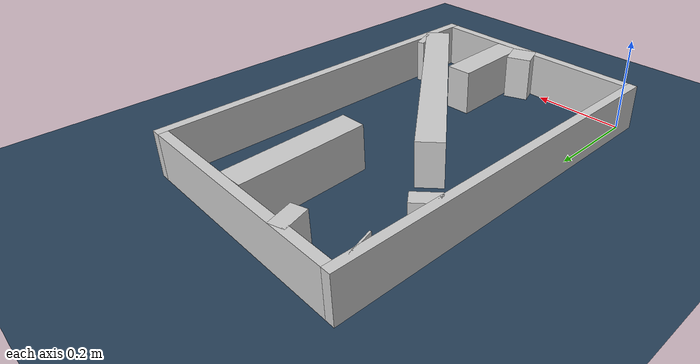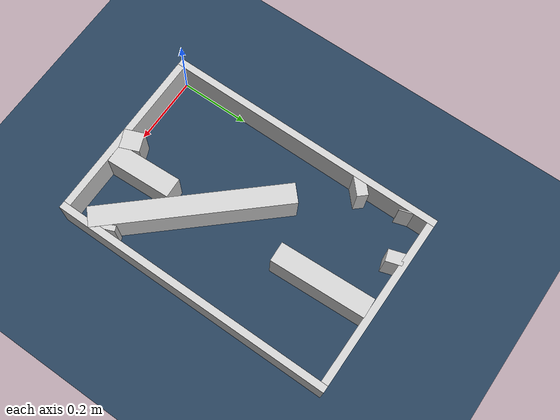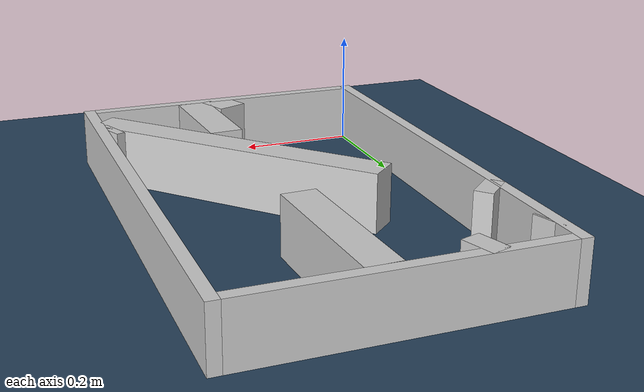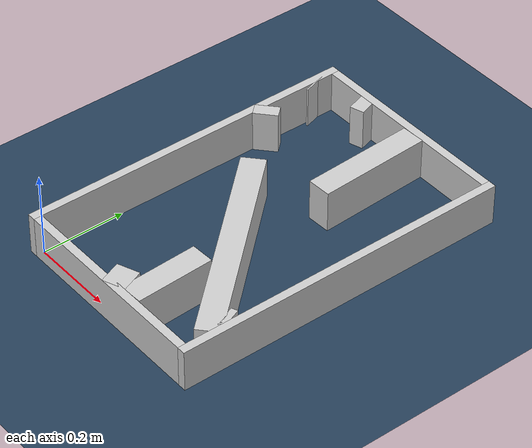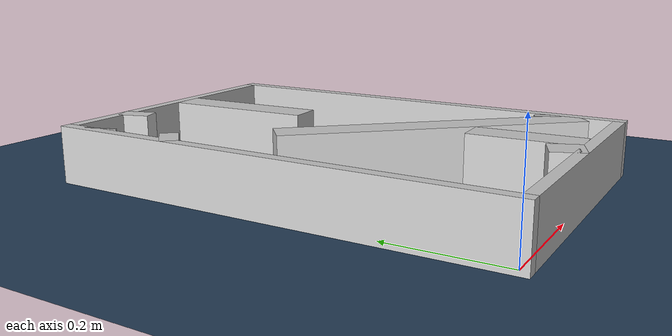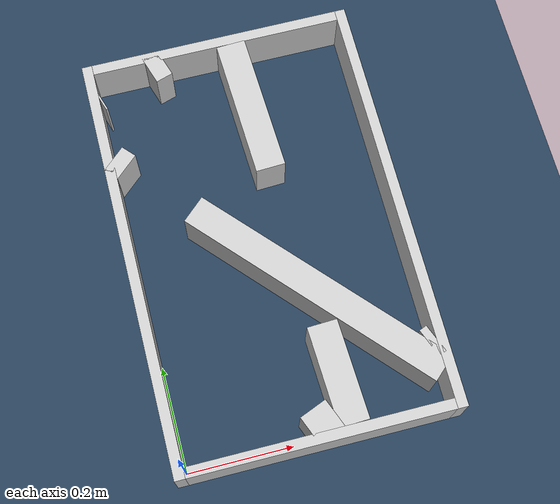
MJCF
<?xml version="1.0" ?>
<mujoco model="generated_real_template">
  <compiler angle="degree"/>
  <option timestep="0.002" integrator="implicitfast" iterations="100" cone="elliptic"/>
  <default>
    <geom density="1"/>
  </default>
  <asset>
    <texture builtin="gradient" height="3072" rgb1="0.3 0.5 0.7" rgb2="0 0 0" type="skybox" width="512"/>
    <texture builtin="checker" height="300" mark="edge" markrgb="0.8 0.8 0.8" name="groundplane" rgb1="0.2 0.3 0.4" rgb2="0.1 0.2 0.3" type="2d" width="300"/>
    <material name="groundplane" reflectance="0.2" texrepeat="5 5" texture="groundplane" texuniform="true"/>
  </asset>
  <worldbody>
    <light dir="0 0 -1" directional="true" pos="0 0 1.5"/>
    <geom name="floor" type="plane" condim="4" friction="0.5 0.005 0.001" material="groundplane" size="0 0 0.05"/>
    <body name="walls">
      <geom name="wall_boundary_left" type="box" condim="4" friction="1.0 0.005 0.0001" rgba="0.8 0.8 0.8 1" pos="-0.010000 0.387500 0.050000" euler="0 0 0.000000" size="0.010000 0.407500 0.050000"/>
      <geom name="wall_boundary_right" type="box" condim="4" friction="1.0 0.005 0.0001" rgba="0.8 0.8 0.8 1" pos="0.500000 0.387500 0.050000" euler="0 0 0.000000" size="0.010000 0.407500 0.050000"/>
      <geom name="wall_boundary_bottom" type="box" condim="4" friction="1.0 0.005 0.0001" rgba="0.8 0.8 0.8 1" pos="0.245000 -0.010000 0.050000" euler="0 0 0.000000" size="0.245000 0.010000 0.050000"/>
      <geom name="wall_boundary_top" type="box" condim="4" friction="1.0 0.005 0.0001" rgba="0.8 0.8 0.8 1" pos="0.245000 0.785000 0.050000" euler="0 0 0.000000" size="0.245000 0.010000 0.050000"/>
      <geom name="wall_inner_1_1" type="box" condim="4" friction="1.0 0.005 0.0001" rgba="0.8 0.8 0.8 1" pos="0.482721 0.107862 0.050000" euler="0 0 -158.267520" size="0.007836 0.028500 0.050000"/>
      <geom name="wall_inner_1_2" type="box" condim="4" friction="1.0 0.005 0.0001" rgba="0.8 0.8 0.8 1" pos="0.253913 0.016658 0.050000" euler="0 0 -158.267520" size="0.027500 0.028500 0.050000"/>
      <geom name="wall_inner_2_1" type="box" condim="4" friction="1.0 0.005 0.0001" rgba="0.8 0.8 0.8 1" pos="0.001672 0.724279 0.050000" euler="0 0 17.518185" size="0.001754 0.028500 0.050000"/>
      <geom name="wall_inner_2_2" type="box" condim="4" friction="1.0 0.005 0.0001" rgba="0.8 0.8 0.8 1" pos="0.123311 0.762674 0.050000" euler="0 0 17.518185" size="0.017098 0.028500 0.050000"/>
      <geom name="wall_inner_3_1" type="box" condim="4" friction="1.0 0.005 0.0001" rgba="0.8 0.8 0.8 1" pos="0.279105 0.638881 0.050000" euler="0 0 -87.454652" size="0.136253 0.028500 0.050000"/>
      <geom name="wall_inner_3_2" type="box" condim="4" friction="1.0 0.005 0.0001" rgba="0.8 0.8 0.8 1" pos="0.303336 0.093808 0.050000" euler="0 0 -87.454652" size="0.093901 0.028500 0.050000"/>
      <geom name="wall_inner_4_1" type="box" condim="4" friction="1.0 0.005 0.0001" rgba="0.8 0.8 0.8 1" pos="0.011491 0.581619 0.050000" euler="0 0 -47.796962" size="0.015449 0.028500 0.050000"/>
      <geom name="wall_inner_4_2" type="box" condim="4" friction="1.0 0.005 0.0001" rgba="0.8 0.8 0.8 1" pos="0.306573 0.256224 0.050000" euler="0 0 -47.796962" size="0.271398 0.028500 0.050000"/>
    </body>
  </worldbody>
</mujoco>
